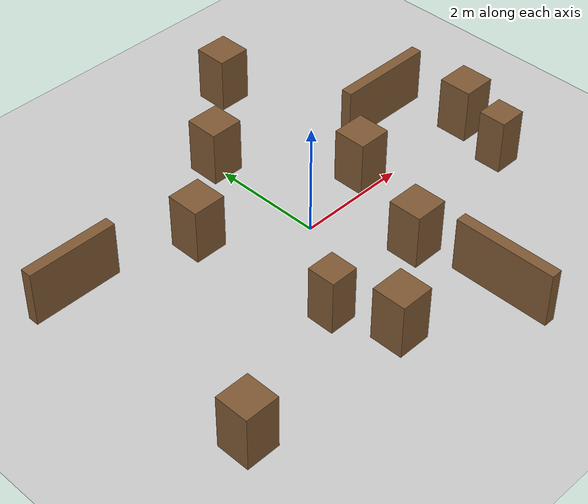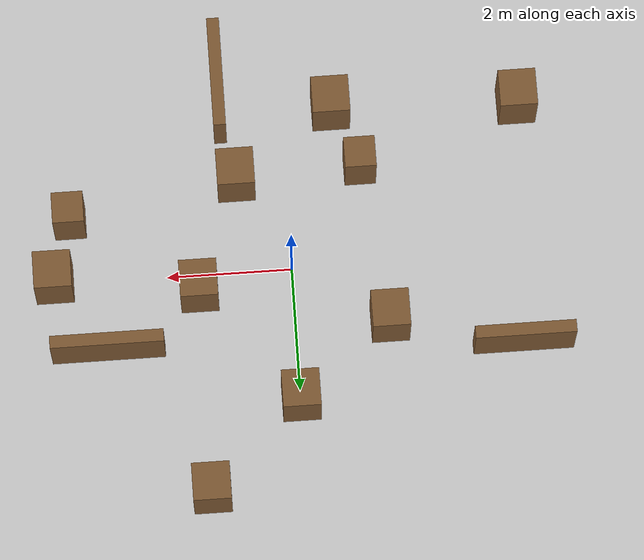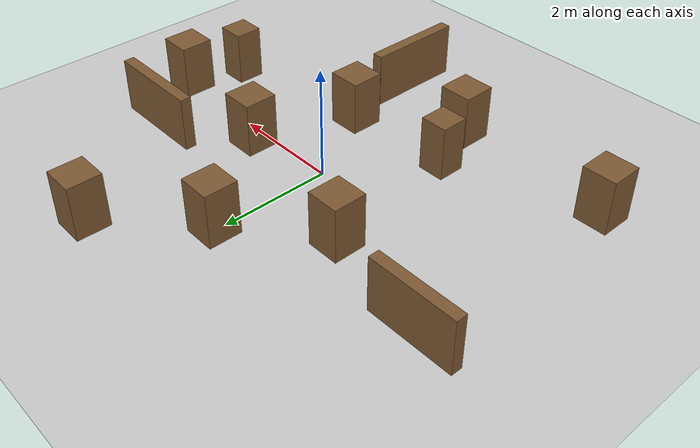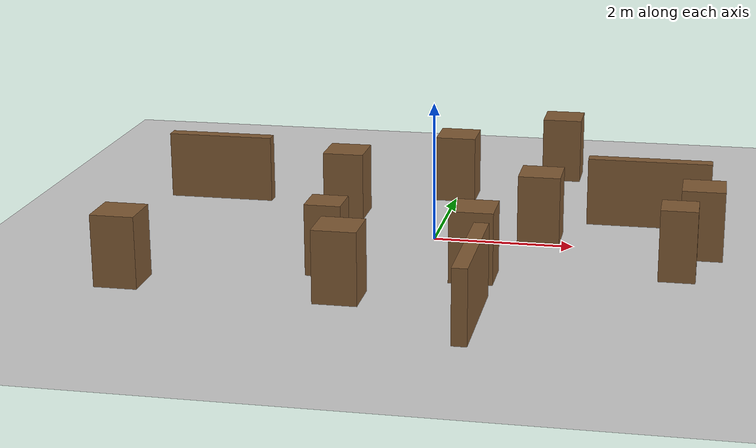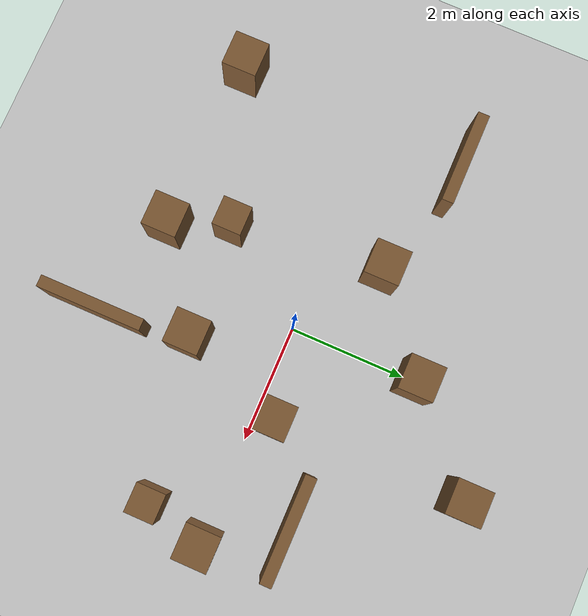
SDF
<sdf version="1.6">
 <world name="default">
  <plugin name="gazebo_ros_state" filename="libgazebo_ros_state.so">
   <ros><namespace>/gazebo</namespace></ros>
   <update_rate>1.0</update_rate>
  </plugin>
  <include><uri>model://ground_plane</uri></include>
  <include><uri>model://sun</uri></include>
  <physics type="ode">
   <real_time_update_rate>1000.0</real_time_update_rate>
   <max_step_size>0.001</max_step_size>
   <real_time_factor>1</real_time_factor>
  </physics>
  <model name="box_m0">
   <static>true</static>
   <pose>0.0 2.2 0.5 0 0 0</pose>
   <link name="link">
    <collision name="c"><geometry><box><size>0.6 0.6 1.0</size></box></geometry></collision>
    <visual name="v">
     <geometry><box><size>0.6 0.6 1.0</size></box></geometry>
     <material><ambient>0.5 0.35 0.2 1</ambient><diffuse>0.5 0.35 0.2 1</diffuse></material>
    </visual>
   </link>
  </model>
  <model name="box_m1">
   <static>true</static>
   <pose>-0.8 -2.6 0.5 0 0 0</pose>
   <link name="link">
    <collision name="c"><geometry><box><size>0.6 0.6 1.0</size></box></geometry></collision>
    <visual name="v">
     <geometry><box><size>0.6 0.6 1.0</size></box></geometry>
     <material><ambient>0.5 0.35 0.2 1</ambient><diffuse>0.5 0.35 0.2 1</diffuse></material>
    </visual>
   </link>
  </model>
  <model name="box_m2">
   <static>true</static>
   <pose>1.5 0.3 0.5 0 0 0</pose>
   <link name="link">
    <collision name="c"><geometry><box><size>0.6 0.6 1.0</size></box></geometry></collision>
    <visual name="v">
     <geometry><box><size>0.6 0.6 1.0</size></box></geometry>
     <material><ambient>0.5 0.35 0.2 1</ambient><diffuse>0.5 0.35 0.2 1</diffuse></material>
    </visual>
   </link>
  </model>
  <model name="wall_m0">
   <static>true</static>
   <pose>-3.6 1.5 0.5 0 0 0</pose>
   <link name="link">
    <collision name="c"><geometry><box><size>1.6 0.2 1.0</size></box></geometry></collision>
    <visual name="v">
     <geometry><box><size>1.6 0.2 1.0</size></box></geometry>
     <material><ambient>0.5 0.35 0.2 1</ambient><diffuse>0.5 0.35 0.2 1</diffuse></material>
    </visual>
   </link>
  </model>
  <model name="box_c0">
   <static>true</static>
   <pose>-1.5 1.0 0.5 0 0 0</pose>
   <link name="link">
    <collision name="c"><geometry><box><size>0.6 0.6 1.0</size></box></geometry></collision>
    <visual name="v">
     <geometry><box><size>0.6 0.6 1.0</size></box></geometry>
     <material><ambient>0.5 0.35 0.2 1</ambient><diffuse>0.5 0.35 0.2 1</diffuse></material>
    </visual>
   </link>
  </model>
  <model name="box_c1">
   <static>true</static>
   <pose>0.8 -1.5 0.5 0 0 0</pose>
   <link name="link">
    <collision name="c"><geometry><box><size>0.6 0.6 1.0</size></box></geometry></collision>
    <visual name="v">
     <geometry><box><size>0.6 0.6 1.0</size></box></geometry>
     <material><ambient>0.5 0.35 0.2 1</ambient><diffuse>0.5 0.35 0.2 1</diffuse></material>
    </visual>
   </link>
  </model>
  <model name="box_c2">
   <static>true</static>
   <pose>3.8 0.0 0.5 0 0 0</pose>
   <link name="link">
    <collision name="c"><geometry><box><size>0.6 0.6 1.0</size></box></geometry></collision>
    <visual name="v">
     <geometry><box><size>0.6 0.6 1.0</size></box></geometry>
     <material><ambient>0.5 0.35 0.2 1</ambient><diffuse>0.5 0.35 0.2 1</diffuse></material>
    </visual>
   </link>
  </model>
  <model name="box_c3">
   <static>true</static>
   <pose>-3.8 -2.5 0.5 0 0 0</pose>
   <link name="link">
    <collision name="c"><geometry><box><size>0.6 0.6 1.0</size></box></geometry></collision>
    <visual name="v">
     <geometry><box><size>0.6 0.6 1.0</size></box></geometry>
     <material><ambient>0.5 0.35 0.2 1</ambient><diffuse>0.5 0.35 0.2 1</diffuse></material>
    </visual>
   </link>
  </model>
  <model name="box_c4">
   <static>true</static>
   <pose>1.5 3.6 0.5 0 0 0</pose>
   <link name="link">
    <collision name="c"><geometry><box><size>0.6 0.6 1.0</size></box></geometry></collision>
    <visual name="v">
     <geometry><box><size>0.6 0.6 1.0</size></box></geometry>
     <material><ambient>0.5 0.35 0.2 1</ambient><diffuse>0.5 0.35 0.2 1</diffuse></material>
    </visual>
   </link>
  </model>
  <model name="wall_c0">
   <static>true</static>
   <pose>1.0 -3.1 0.5 0 0 0</pose>
   <link name="link">
    <collision name="c"><geometry><box><size>0.2 1.8 1.0</size></box></geometry></collision>
    <visual name="v">
     <geometry><box><size>0.2 1.8 1.0</size></box></geometry>
     <material><ambient>0.5 0.35 0.2 1</ambient><diffuse>0.5 0.35 0.2 1</diffuse></material>
    </visual>
   </link>
  </model>
  <model name="wall_c1">
   <static>true</static>
   <pose>3.0 1.2 0.5 0 0 0</pose>
   <link name="link">
    <collision name="c"><geometry><box><size>1.8 0.2 1.0</size></box></geometry></collision>
    <visual name="v">
     <geometry><box><size>1.8 0.2 1.0</size></box></geometry>
     <material><ambient>0.5 0.35 0.2 1</ambient><diffuse>0.5 0.35 0.2 1</diffuse></material>
    </visual>
   </link>
  </model>
  <model name="pillar_c0">
   <static>true</static>
   <pose>-1.2 -1.6 0.5 0 0 0</pose>
   <link name="link">
    <collision name="c"><geometry><box><size>0.5 0.5 1.0</size></box></geometry></collision>
    <visual name="v">
     <geometry><box><size>0.5 0.5 1.0</size></box></geometry>
     <material><ambient>0.5 0.35 0.2 1</ambient><diffuse>0.5 0.35 0.2 1</diffuse></material>
    </visual>
   </link>
  </model>
  <model name="pillar_c1">
   <static>true</static>
   <pose>3.5 -1.0 0.5 0 0 0</pose>
   <link name="link">
    <collision name="c"><geometry><box><size>0.5 0.5 1.0</size></box></geometry></collision>
    <visual name="v">
     <geometry><box><size>0.5 0.5 1.0</size></box></geometry>
     <material><ambient>0.5 0.35 0.2 1</ambient><diffuse>0.5 0.35 0.2 1</diffuse></material>
    </visual>
   </link>
  </model>
 </world>
</sdf>
